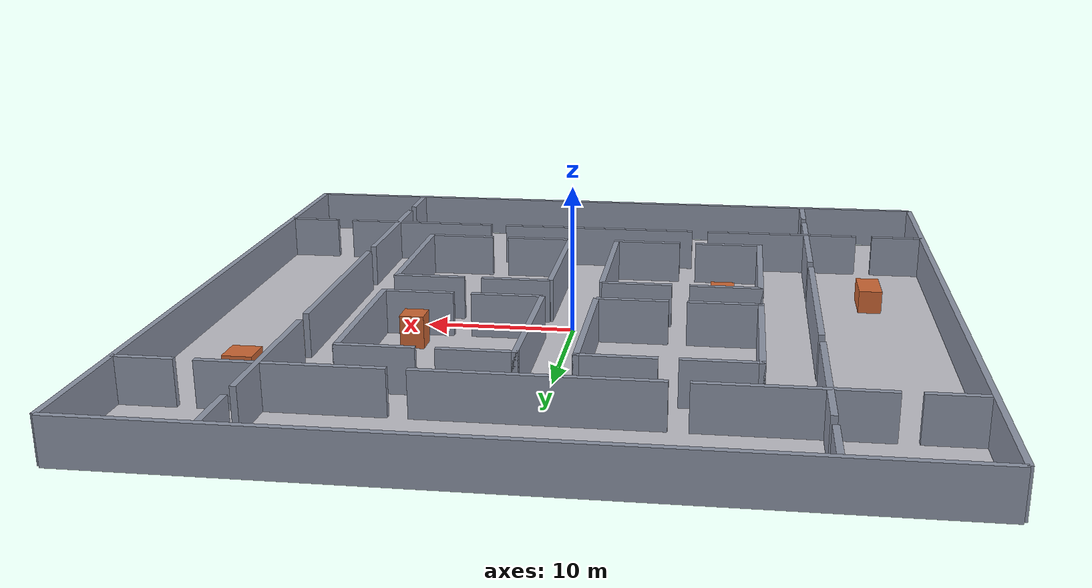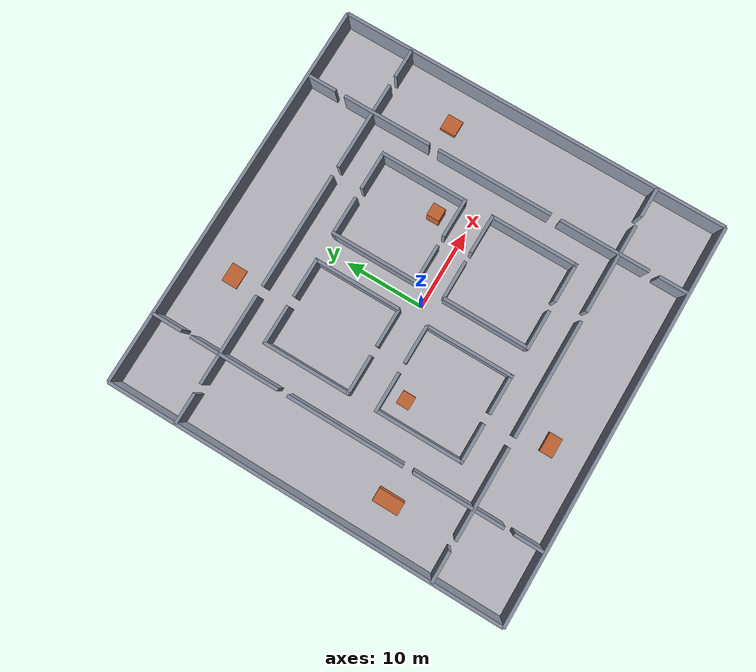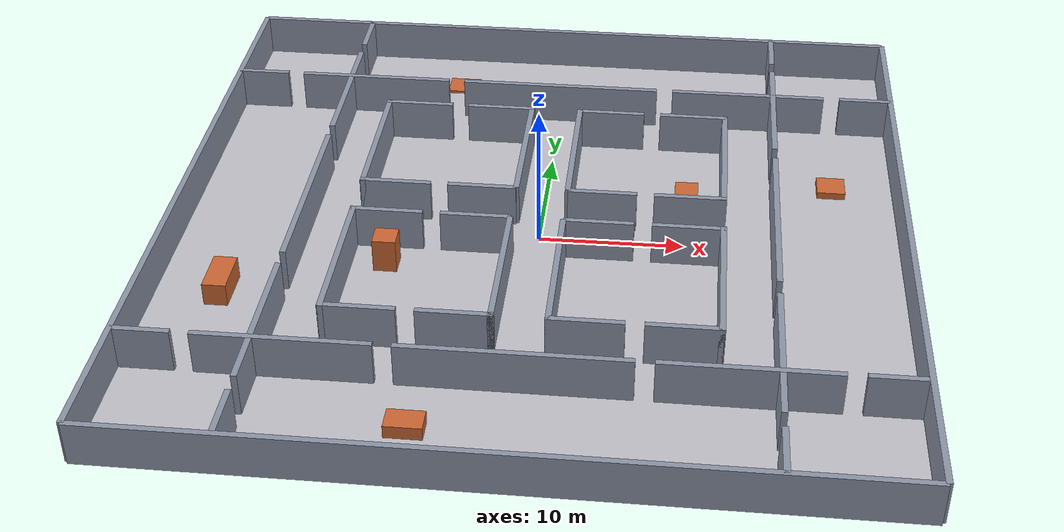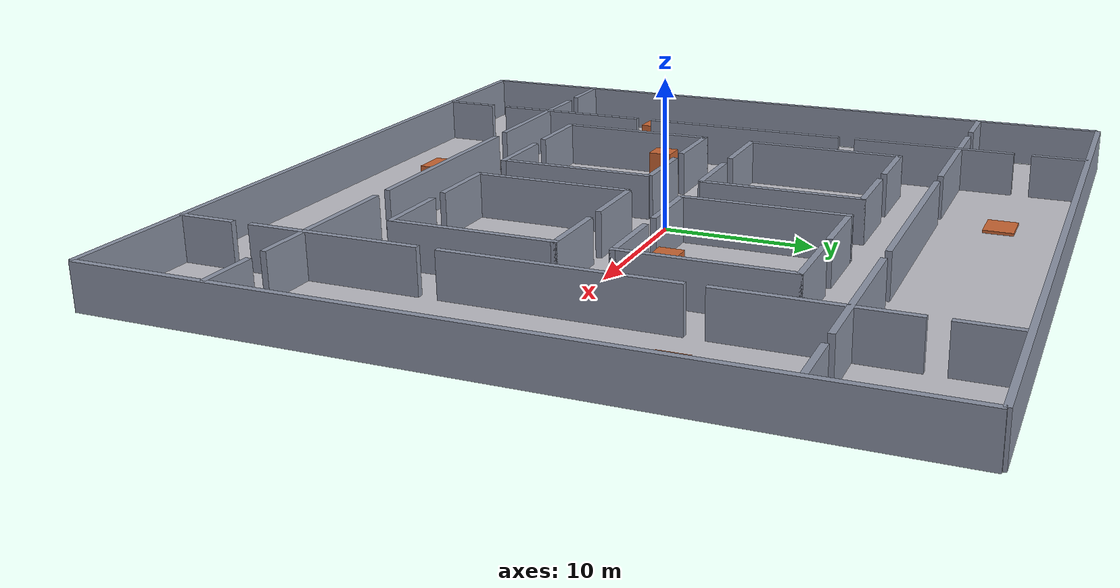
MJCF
<mujoco model="loop_indoor">
  <option timestep="0.01" gravity="0 0 -9.81"/>

  <!-- Default free-camera framing, as in large_indoor.xml: the passive viewer
       otherwise opens at floor level. -->
  <statistic center="0 0 1" extent="45"/>
  <visual>
    <headlight ambient="0.5 0.5 0.5" diffuse="0.45 0.45 0.45" specular="0 0 0"/>
    <global azimuth="130" elevation="-55"/>
  </visual>

  <worldbody>
    <!-- Directional lights: no positional falloff, so a 50 m floor has no
         hotspot. Lights never collide — no effect on ray-casts or the map. -->
    <light name="key" directional="true" pos="0 0 20" dir="0.2 0.3 -1"
           diffuse="0.55 0.55 0.55" specular="0 0 0"/>
    <light name="fill" directional="true" pos="15 15 20" dir="-0.5 -0.5 -1"
           diffuse="0.35 0.35 0.35" specular="0 0 0"/>

    <!-- Floor -->
    <geom name="floor" type="plane" size="25 25 0.05"
          rgba="0.75 0.75 0.78 1.0"/>

    <!-- Perimeter (generated; see the header) -->
    <geom name="wall_north" type="box" pos="0 25 1.5"
          size="25 0.2 1.5" rgba="0.55 0.58 0.65 1.0"/>
    <geom name="wall_south" type="box" pos="0 -25 1.5"
          size="25 0.2 1.5" rgba="0.55 0.58 0.65 1.0"/>
    <geom name="wall_east" type="box" pos="25 0 1.5"
          size="0.2 25 1.5" rgba="0.55 0.58 0.65 1.0"/>
    <geom name="wall_west" type="box" pos="-25 0 1.5"
          size="0.2 25 1.5" rgba="0.55 0.58 0.65 1.0"/>

    <geom name="ring_n_1" type="box" pos="-23.1 16.2 1.5"
          size="1.9 0.2 1.5" rgba="0.55 0.58 0.65 1.0"/>
    <geom name="ring_n_2" type="box" pos="-14.3 16.2 1.5"
          size="5.7 0.2 1.5" rgba="0.55 0.58 0.65 1.0"/>
    <geom name="ring_n_3" type="box" pos="0 16.2 1.5"
          size="7.4 0.2 1.5" rgba="0.55 0.58 0.65 1.0"/>
    <geom name="ring_n_4" type="box" pos="14.3 16.2 1.5"
          size="5.7 0.2 1.5" rgba="0.55 0.58 0.65 1.0"/>
    <geom name="ring_n_5" type="box" pos="23.1 16.2 1.5"
          size="1.9 0.2 1.5" rgba="0.55 0.58 0.65 1.0"/>
    <geom name="ring_s_1" type="box" pos="-23.1 -16.2 1.5"
          size="1.9 0.2 1.5" rgba="0.55 0.58 0.65 1.0"/>
    <geom name="ring_s_2" type="box" pos="-14.3 -16.2 1.5"
          size="5.7 0.2 1.5" rgba="0.55 0.58 0.65 1.0"/>
    <geom name="ring_s_3" type="box" pos="0 -16.2 1.5"
          size="7.4 0.2 1.5" rgba="0.55 0.58 0.65 1.0"/>
    <geom name="ring_s_4" type="box" pos="14.3 -16.2 1.5"
          size="5.7 0.2 1.5" rgba="0.55 0.58 0.65 1.0"/>
    <geom name="ring_s_5" type="box" pos="23.1 -16.2 1.5"
          size="1.9 0.2 1.5" rgba="0.55 0.58 0.65 1.0"/>
    <geom name="ring_e_1" type="box" pos="16.2 -23.1 1.5"
          size="0.2 1.9 1.5" rgba="0.55 0.58 0.65 1.0"/>
    <geom name="ring_e_2" type="box" pos="16.2 -14.3 1.5"
          size="0.2 5.7 1.5" rgba="0.55 0.58 0.65 1.0"/>
    <geom name="ring_e_3" type="box" pos="16.2 0 1.5"
          size="0.2 7.4 1.5" rgba="0.55 0.58 0.65 1.0"/>
    <geom name="ring_e_4" type="box" pos="16.2 14.3 1.5"
          size="0.2 5.7 1.5" rgba="0.55 0.58 0.65 1.0"/>
    <geom name="ring_e_5" type="box" pos="16.2 23.1 1.5"
          size="0.2 1.9 1.5" rgba="0.55 0.58 0.65 1.0"/>
    <geom name="ring_w_1" type="box" pos="-16.2 -23.1 1.5"
          size="0.2 1.9 1.5" rgba="0.55 0.58 0.65 1.0"/>
    <geom name="ring_w_2" type="box" pos="-16.2 -14.3 1.5"
          size="0.2 5.7 1.5" rgba="0.55 0.58 0.65 1.0"/>
    <geom name="ring_w_3" type="box" pos="-16.2 0 1.5"
          size="0.2 7.4 1.5" rgba="0.55 0.58 0.65 1.0"/>
    <geom name="ring_w_4" type="box" pos="-16.2 14.3 1.5"
          size="0.2 5.7 1.5" rgba="0.55 0.58 0.65 1.0"/>
    <geom name="ring_w_5" type="box" pos="-16.2 23.1 1.5"
          size="0.2 1.9 1.5" rgba="0.55 0.58 0.65 1.0"/>

    <!-- Inner ring wall: corridor outside it, core rooms inside. The
         north/south runs carry the cross-corridor mouth plus one door
         per core room; east/west carry the mouth only. -->
    <geom name="core_n_1" type="box" pos="-10.3 12.6 1.5"
          size="2.5 0.2 1.5" rgba="0.55 0.58 0.65 1.0"/>
    <geom name="core_n_2" type="box" pos="-4.1 12.6 1.5"
          size="2.5 0.2 1.5" rgba="0.55 0.58 0.65 1.0"/>
    <geom name="core_n_3" type="box" pos="4.1 12.6 1.5"
          size="2.5 0.2 1.5" rgba="0.55 0.58 0.65 1.0"/>
    <geom name="core_n_4" type="box" pos="10.3 12.6 1.5"
          size="2.5 0.2 1.5" rgba="0.55 0.58 0.65 1.0"/>
    <geom name="core_s_1" type="box" pos="-10.3 -12.6 1.5"
          size="2.5 0.2 1.5" rgba="0.55 0.58 0.65 1.0"/>
    <geom name="core_s_2" type="box" pos="-4.1 -12.6 1.5"
          size="2.5 0.2 1.5" rgba="0.55 0.58 0.65 1.0"/>
    <geom name="core_s_3" type="box" pos="4.1 -12.6 1.5"
          size="2.5 0.2 1.5" rgba="0.55 0.58 0.65 1.0"/>
    <geom name="core_s_4" type="box" pos="10.3 -12.6 1.5"
          size="2.5 0.2 1.5" rgba="0.55 0.58 0.65 1.0"/>
    <geom name="core_e_1" type="box" pos="12.6 -7.2 1.5"
          size="0.2 5.6 1.5" rgba="0.55 0.58 0.65 1.0"/>
    <geom name="core_e_2" type="box" pos="12.6 7.2 1.5"
          size="0.2 5.6 1.5" rgba="0.55 0.58 0.65 1.0"/>
    <geom name="core_w_1" type="box" pos="-12.6 -7.2 1.5"
          size="0.2 5.6 1.5" rgba="0.55 0.58 0.65 1.0"/>
    <geom name="core_w_2" type="box" pos="-12.6 7.2 1.5"
          size="0.2 5.6 1.5" rgba="0.55 0.58 0.65 1.0"/>

    <!-- Cross-corridor walls: the two chords through the centre. -->
    <geom name="cross_e_1" type="box" pos="1.8 7.3 1.5"
          size="0.2 5.5 1.5" rgba="0.55 0.58 0.65 1.0"/>
    <geom name="cross_e_2" type="box" pos="1.8 -7.3 1.5"
          size="0.2 5.5 1.5" rgba="0.55 0.58 0.65 1.0"/>
    <geom name="cross_w_1" type="box" pos="-1.8 7.3 1.5"
          size="0.2 5.5 1.5" rgba="0.55 0.58 0.65 1.0"/>
    <geom name="cross_w_2" type="box" pos="-1.8 -7.3 1.5"
          size="0.2 5.5 1.5" rgba="0.55 0.58 0.65 1.0"/>
    <geom name="cross_n_1" type="box" pos="4.2 1.8 1.5"
          size="2.4 0.2 1.5" rgba="0.55 0.58 0.65 1.0"/>
    <geom name="cross_n_2" type="box" pos="10.3 1.8 1.5"
          size="2.5 0.2 1.5" rgba="0.55 0.58 0.65 1.0"/>
    <geom name="cross_n_3" type="box" pos="-10.3 1.8 1.5"
          size="2.5 0.2 1.5" rgba="0.55 0.58 0.65 1.0"/>
    <geom name="cross_n_4" type="box" pos="-4.2 1.8 1.5"
          size="2.4 0.2 1.5" rgba="0.55 0.58 0.65 1.0"/>
    <geom name="cross_s_1" type="box" pos="4.2 -1.8 1.5"
          size="2.4 0.2 1.5" rgba="0.55 0.58 0.65 1.0"/>
    <geom name="cross_s_2" type="box" pos="10.3 -1.8 1.5"
          size="2.5 0.2 1.5" rgba="0.55 0.58 0.65 1.0"/>
    <geom name="cross_s_3" type="box" pos="-10.3 -1.8 1.5"
          size="2.5 0.2 1.5" rgba="0.55 0.58 0.65 1.0"/>
    <geom name="cross_s_4" type="box" pos="-4.2 -1.8 1.5"
          size="2.4 0.2 1.5" rgba="0.55 0.58 0.65 1.0"/>

    <!-- Obstacles. Tops at 0.2 / 0.5 / 0.9 / 1.6 / 2.2 / 2.4 m; see the
         header on why the spread matters at a 0.3 m flight altitude. -->
    <geom name="pallet_n" type="box" pos="-8 20.4 0.1"
          size="1.2 1 0.1" rgba="0.8 0.4 0.2 1.0"/>
    <geom name="crate_e" type="box" pos="20.4 8 0.25"
          size="1 1 0.25" rgba="0.8 0.4 0.2 1.0"/>
    <geom name="crate_s" type="box" pos="-6 -20.4 0.45"
          size="1.2 0.8 0.45" rgba="0.8 0.4 0.2 1.0"/>
    <geom name="shelf_w" type="box" pos="-20.4 -8 0.8"
          size="0.8 1.6 0.8" rgba="0.8 0.4 0.2 1.0"/>
    <geom name="pillar_ne" type="box" pos="10 4 1.1"
          size="0.8 0.8 1.1" rgba="0.8 0.4 0.2 1.0"/>
    <geom name="pillar_sw" type="box" pos="-10 -4 1.2"
          size="0.8 0.8 1.2" rgba="0.8 0.4 0.2 1.0"/>
  </worldbody>
</mujoco>
